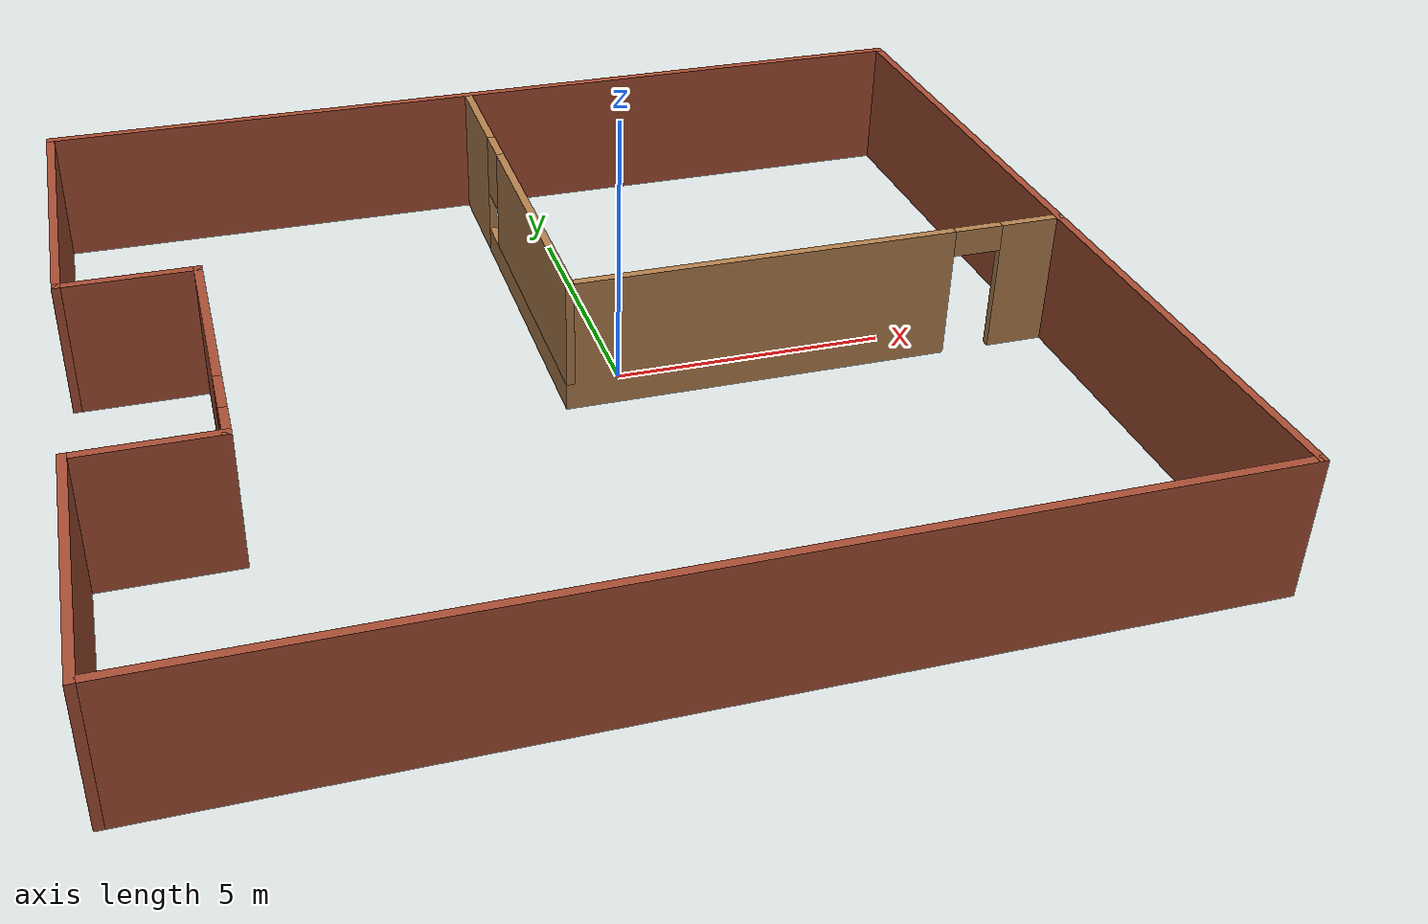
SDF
<?xml version='1.0'?>
<sdf version='1.6'>
  <model name='Building'>
    <pose frame=''>-0.6935 -0.5445 0 0 -0 0</pose>
    <link name='Wall_0'>
      <collision name='Wall_0_Collision'>
        <geometry>
          <box>
            <size>17.57 0.15 2.5</size>
          </box>
        </geometry>
        <pose frame=''>0 0 1.25 0 -0 0</pose>
      </collision>
      <visual name='Wall_0_Visual'>
        <pose frame=''>0 0 1.25 0 -0 0</pose>
        <geometry>
          <box>
            <size>17.57 0.15 2.5</size>
          </box>
        </geometry>
        <material>
          <script>
            <uri>file://media/materials/scripts/gazebo.material</uri>
            <name>Gazebo/Bricks</name>
          </script>
          <ambient>1 1 1 1</ambient>
        </material>
        <meta>
          <layer>0</layer>
        </meta>
      </visual>
      <pose frame=''>0.0035 7.9515 0 0 -0 0</pose>
    </link>
    <link name='Wall_10'>
      <collision name='Wall_10_Collision'>
        <geometry>
          <box>
            <size>6 0.15 2.5</size>
          </box>
        </geometry>
        <pose frame=''>0 0 1.25 0 -0 0</pose>
      </collision>
      <visual name='Wall_10_Visual'>
        <pose frame=''>0 0 1.25 0 -0 0</pose>
        <geometry>
          <box>
            <size>6 0.15 2.5</size>
          </box>
        </geometry>
        <material>
          <script>
            <uri>file://media/materials/scripts/gazebo.material</uri>
            <name>Gazebo/Bricks</name>
          </script>
          <ambient>1 1 1 1</ambient>
        </material>
        <meta>
          <layer>0</layer>
        </meta>
      </visual>
      <pose frame=''>-8.7135 4.9235 0 0 -0 1.5708</pose>
    </link>
    <link name='Wall_13'>
      <pose frame=''>-0.397363 3.88628 0 0 0 -1.5708</pose>
      <visual name='Wall_13_Visual_0'>
        <pose frame=''>-3.02034 0 1.25 0 -0 0</pose>
        <geometry>
          <box>
            <size>2.20931 0.15 2.5</size>
          </box>
        </geometry>
        <material>
          <script>
            <uri>file://media/materials/scripts/gazebo.material</uri>
            <name>Gazebo/Wood</name>
          </script>
          <ambient>1 1 1 1</ambient>
        </material>
        <meta>
          <layer>0</layer>
        </meta>
      </visual>
      <collision name='Wall_13_Collision_0'>
        <geometry>
          <box>
            <size>2.20931 0.15 2.5</size>
          </box>
        </geometry>
        <pose frame=''>-3.02034 0 1.25 0 -0 0</pose>
      </collision>
      <visual name='Wall_13_Visual_1'>
        <pose frame=''>1.10465 0 0.25 0 -0 0</pose>
        <geometry>
          <box>
            <size>6.04069 0.15 0.5</size>
          </box>
        </geometry>
        <material>
          <script>
            <uri>file://media/materials/scripts/gazebo.material</uri>
            <name>Gazebo/Wood</name>
          </script>
          <ambient>1 1 1 1</ambient>
        </material>
        <meta>
          <layer>0</layer>
        </meta>
      </visual>
      <collision name='Wall_13_Collision_1'>
        <geometry>
          <box>
            <size>6.04069 0.15 0.5</size>
          </box>
        </geometry>
        <pose frame=''>1.10465 0 0.25 0 -0 0</pose>
      </collision>
      <visual name='Wall_13_Visual_2'>
        <pose frame=''>1.50466 0 1.5 0 -0 0</pose>
        <geometry>
          <box>
            <size>5.24069 0.15 2</size>
          </box>
        </geometry>
        <material>
          <script>
            <uri>file://media/materials/scripts/gazebo.material</uri>
            <name>Gazebo/Wood</name>
          </script>
          <ambient>1 1 1 1</ambient>
        </material>
        <meta>
          <layer>0</layer>
        </meta>
      </visual>
      <collision name='Wall_13_Collision_2'>
        <geometry>
          <box>
            <size>5.24069 0.15 2</size>
          </box>
        </geometry>
        <pose frame=''>1.50466 0 1.5 0 -0 0</pose>
      </collision>
      <visual name='Wall_13_Visual_3'>
        <pose frame=''>-1.51569 0 1.9 0 -0 0</pose>
        <geometry>
          <box>
            <size>0.8 0.15 1.2</size>
          </box>
        </geometry>
        <material>
          <script>
            <uri>file://media/materials/scripts/gazebo.material</uri>
            <name>Gazebo/Wood</name>
          </script>
          <ambient>1 1 1 1</ambient>
        </material>
        <meta>
          <layer>0</layer>
        </meta>
      </visual>
      <collision name='Wall_13_Collision_3'>
        <geometry>
          <box>
            <size>0.8 0.15 1.2</size>
          </box>
        </geometry>
        <pose frame=''>-1.51569 0 1.9 0 -0 0</pose>
      </collision>
    </link>
    <link name='Wall_14'>
      <pose frame=''>4.15264 -0.163718 0 0 -0 0</pose>
      <visual name='Wall_14_Visual_0'>
        <pose frame=''>-1.05126 0 1.25 0 -0 0</pose>
        <geometry>
          <box>
            <size>7.14748 0.15 2.5</size>
          </box>
        </geometry>
        <material>
          <script>
            <uri>file://media/materials/scripts/gazebo.material</uri>
            <name>Gazebo/Wood</name>
          </script>
          <ambient>1 1 1 1</ambient>
        </material>
        <meta>
          <layer>0</layer>
        </meta>
      </visual>
      <collision name='Wall_14_Collision_0'>
        <geometry>
          <box>
            <size>7.14748 0.15 2.5</size>
          </box>
        </geometry>
        <pose frame=''>-1.05126 0 1.25 0 -0 0</pose>
      </collision>
      <visual name='Wall_14_Visual_1'>
        <pose frame=''>4.02374 0 1.25 0 -0 0</pose>
        <geometry>
          <box>
            <size>1.20252 0.15 2.5</size>
          </box>
        </geometry>
        <material>
          <script>
            <uri>file://media/materials/scripts/gazebo.material</uri>
            <name>Gazebo/Wood</name>
          </script>
          <ambient>1 1 1 1</ambient>
        </material>
        <meta>
          <layer>0</layer>
        </meta>
      </visual>
      <collision name='Wall_14_Collision_1'>
        <geometry>
          <box>
            <size>1.20252 0.15 2.5</size>
          </box>
        </geometry>
        <pose frame=''>4.02374 0 1.25 0 -0 0</pose>
      </collision>
      <visual name='Wall_14_Visual_2'>
        <pose frame=''>2.97248 0 2.25 0 -0 0</pose>
        <geometry>
          <box>
            <size>0.9 0.15 0.5</size>
          </box>
        </geometry>
        <material>
          <script>
            <uri>file://media/materials/scripts/gazebo.material</uri>
            <name>Gazebo/Wood</name>
          </script>
          <ambient>1 1 1 1</ambient>
        </material>
        <meta>
          <layer>0</layer>
        </meta>
      </visual>
      <collision name='Wall_14_Collision_2'>
        <geometry>
          <box>
            <size>0.9 0.15 0.5</size>
          </box>
        </geometry>
        <pose frame=''>2.97248 0 2.25 0 -0 0</pose>
      </collision>
    </link>
    <link name='Wall_4'>
      <collision name='Wall_4_Collision'>
        <geometry>
          <box>
            <size>16.0529 0.15 2.5</size>
          </box>
        </geometry>
        <pose frame=''>0 0 1.25 0 -0 0</pose>
      </collision>
      <visual name='Wall_4_Visual'>
        <pose frame=''>0 0 1.25 0 -0 0</pose>
        <geometry>
          <box>
            <size>16.0529 0.15 2.5</size>
          </box>
        </geometry>
        <material>
          <script>
            <uri>file://media/materials/scripts/gazebo.material</uri>
            <name>Gazebo/Bricks</name>
          </script>
          <ambient>1 1 1 1</ambient>
        </material>
        <meta>
          <layer>0</layer>
        </meta>
      </visual>
      <pose frame=''>8.7135 0 0 0 0 -1.5708</pose>
    </link>
    <link name='Wall_5'>
      <collision name='Wall_5_Collision'>
        <geometry>
          <box>
            <size>17.577 0.15 2.5</size>
          </box>
        </geometry>
        <pose frame=''>0 0 1.25 0 -0 0</pose>
      </collision>
      <visual name='Wall_5_Visual'>
        <pose frame=''>0 0 1.25 0 -0 0</pose>
        <geometry>
          <box>
            <size>17.577 0.15 2.5</size>
          </box>
        </geometry>
        <material>
          <script>
            <uri>file://media/materials/scripts/gazebo.material</uri>
            <name>Gazebo/Bricks</name>
          </script>
          <ambient>1 1 1 1</ambient>
        </material>
        <meta>
          <layer>0</layer>
        </meta>
      </visual>
      <pose frame=''>0 -7.9515 0 0 -0 3.14159</pose>
    </link>
    <link name='Wall_6'>
      <collision name='Wall_6_Collision'>
        <geometry>
          <box>
            <size>5 0.15 2.5</size>
          </box>
        </geometry>
        <pose frame=''>0 0 1.25 0 -0 0</pose>
      </collision>
      <visual name='Wall_6_Visual'>
        <pose frame=''>0 0 1.25 0 -0 0</pose>
        <geometry>
          <box>
            <size>5 0.15 2.5</size>
          </box>
        </geometry>
        <material>
          <script>
            <uri>file://media/materials/scripts/gazebo.material</uri>
            <name>Gazebo/Bricks</name>
          </script>
          <ambient>1 1 1 1</ambient>
        </material>
        <meta>
          <layer>0</layer>
        </meta>
      </visual>
      <pose frame=''>-8.7135 -5.5265 0 0 -0 1.5708</pose>
    </link>
    <link name='Wall_7'>
      <collision name='Wall_7_Collision'>
        <geometry>
          <box>
            <size>2.5 0.15 2.5</size>
          </box>
        </geometry>
        <pose frame=''>0 0 1.25 0 -0 0</pose>
      </collision>
      <visual name='Wall_7_Visual'>
        <pose frame=''>0 0 1.25 0 -0 0</pose>
        <geometry>
          <box>
            <size>2.5 0.15 2.5</size>
          </box>
        </geometry>
        <material>
          <script>
            <uri>file://media/materials/scripts/gazebo.material</uri>
            <name>Gazebo/Bricks</name>
          </script>
          <ambient>1 1 1 1</ambient>
        </material>
        <meta>
          <layer>0</layer>
        </meta>
      </visual>
      <pose frame=''>-7.5385 -3.1015 0 0 -0 0</pose>
    </link>
    <link name='Wall_8'>
      <pose frame=''>-6.3635 -0.5515 0 0 -0 1.5708</pose>
      <visual name='Wall_8_Visual_0'>
        <pose frame=''>-2.25116 0 1.25 0 -0 0</pose>
        <geometry>
          <box>
            <size>0.747673 0.15 2.5</size>
          </box>
        </geometry>
        <material>
          <script>
            <uri>file://media/materials/scripts/gazebo.material</uri>
            <name>Gazebo/Bricks</name>
          </script>
          <ambient>1 1 1 1</ambient>
        </material>
        <meta>
          <layer>0</layer>
        </meta>
      </visual>
      <collision name='Wall_8_Collision_0'>
        <geometry>
          <box>
            <size>0.747673 0.15 2.5</size>
          </box>
        </geometry>
        <pose frame=''>-2.25116 0 1.25 0 -0 0</pose>
      </collision>
      <visual name='Wall_8_Visual_1'>
        <pose frame=''>0.823836 0 1.25 0 -0 0</pose>
        <geometry>
          <box>
            <size>3.60233 0.15 2.5</size>
          </box>
        </geometry>
        <material>
          <script>
            <uri>file://media/materials/scripts/gazebo.material</uri>
            <name>Gazebo/Bricks</name>
          </script>
          <ambient>1 1 1 1</ambient>
        </material>
        <meta>
          <layer>0</layer>
        </meta>
      </visual>
      <collision name='Wall_8_Collision_1'>
        <geometry>
          <box>
            <size>3.60233 0.15 2.5</size>
          </box>
        </geometry>
        <pose frame=''>0.823836 0 1.25 0 -0 0</pose>
      </collision>
      <visual name='Wall_8_Visual_2'>
        <pose frame=''>-1.42733 0 2.25 0 -0 0</pose>
        <geometry>
          <box>
            <size>0.9 0.15 0.5</size>
          </box>
        </geometry>
        <material>
          <script>
            <uri>file://media/materials/scripts/gazebo.material</uri>
            <name>Gazebo/Bricks</name>
          </script>
          <ambient>1 1 1 1</ambient>
        </material>
        <meta>
          <layer>0</layer>
        </meta>
      </visual>
      <collision name='Wall_8_Collision_2'>
        <geometry>
          <box>
            <size>0.9 0.15 0.5</size>
          </box>
        </geometry>
        <pose frame=''>-1.42733 0 2.25 0 -0 0</pose>
      </collision>
    </link>
    <link name='Wall_9'>
      <collision name='Wall_9_Collision'>
        <geometry>
          <box>
            <size>2.5 0.15 2.5</size>
          </box>
        </geometry>
        <pose frame=''>0 0 1.25 0 -0 0</pose>
      </collision>
      <visual name='Wall_9_Visual'>
        <pose frame=''>0 0 1.25 0 -0 0</pose>
        <geometry>
          <box>
            <size>2.5 0.15 2.5</size>
          </box>
        </geometry>
        <material>
          <script>
            <uri>file://media/materials/scripts/gazebo.material</uri>
            <name>Gazebo/Bricks</name>
          </script>
          <ambient>1 1 1 1</ambient>
        </material>
        <meta>
          <layer>0</layer>
        </meta>
      </visual>
      <pose frame=''>-7.5385 1.9985 0 0 -0 3.14159</pose>
    </link>
    <static>1</static>
  </model>
</sdf>
